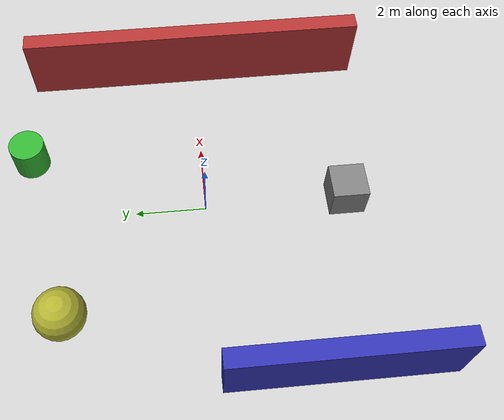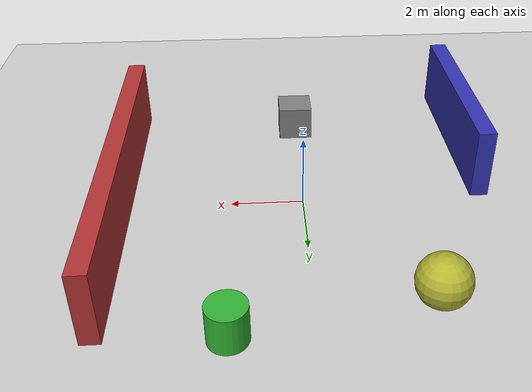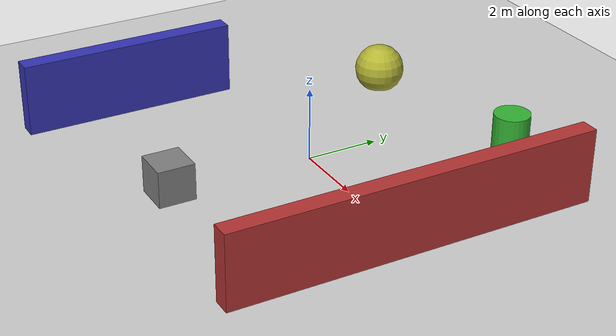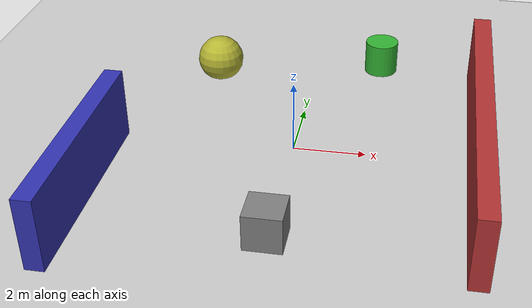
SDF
<?xml version="1.0"?>
<sdf version="1.11">
    <world name="empty">
        <physics name="1ms" type="ignored">
            <max_step_size>0.001</max_step_size>
            <real_time_factor>1.0</real_time_factor>
        </physics>
        <plugin
        filename="gz-sim-physics-system"
        name="gz::sim::systems::Physics">
        </plugin>
        <plugin
        filename="gz-sim-sensors-system"
        name="gz::sim::systems::Sensors">
        </plugin>
        <plugin
        filename="gz-sim-scene-broadcaster-system"
        name="gz::sim::systems::SceneBroadcaster">
        </plugin>
        <plugin
        filename="gz-sim-user-commands-system"
        name="gz::sim::systems::UserCommands">
        </plugin>
        <plugin filename="gz-sim-imu-system"
            name="gz::sim::systems::Imu">
        </plugin>
        <light name="sun" type="directional">
            <cast_shadows>true</cast_shadows>
            <pose>0 0 10 0 0 0</pose>
            <diffuse>0.8 0.8 0.8 1</diffuse>
            <specular>0.2 0.2 0.2 1</specular>
            <attenuation>
                <range>1000</range>
                <constant>0.9</constant>
                <linear>0.01</linear>
                <quadratic>0.001</quadratic>
            </attenuation>
            <direction>-0.5 0.1 -0.9</direction>
        </light>
        <model name="ground_plane">
            <static>true</static>
            <link name="link">
                <collision name="collision">
                    <geometry>
                        <plane>
                            <normal>0 0 1</normal>
                            <size>100 100</size>
                        </plane>
                    </geometry>
                    <surface>
                        <friction>
                            <ode>
                                <mu>50</mu>
                            </ode>
                            <bullet>
                                <friction>1</friction>
                                <friction2>1</friction2>
                                <rolling_friction>0.1</rolling_friction>
                            </bullet>
                        </friction>
                    </surface>
                </collision>
                <visual name="visual">
                    <geometry>
                        <plane>
                            <normal>0 0 1</normal>
                            <size>100 100</size>
                        </plane>
                    </geometry>
                    <material>
                        <ambient>0.8 0.8 0.8 1</ambient>
                        <diffuse>0.8 0.8 0.8 1</diffuse>
                        <specular>0.8 0.8 0.8 1</specular>
                    </material>
                </visual>
            </link>
        </model>
        <model name="wall_1">
            <static>true</static>
            <pose>5 0 1 0 0 0</pose>
            <link name="link">
                <collision name="collision">
                    <geometry>
                        <box>
                            <size>0.5 10 2</size>
                        </box>
                    </geometry>
                </collision>
                <visual name="visual">
                    <geometry>
                        <box>
                            <size>0.5 10 2</size>
                        </box>
                    </geometry>
                    <material>
                        <ambient>0.7 0.2 0.2 1</ambient>
                        <diffuse>0.7 0.2 0.2 1</diffuse>
                    </material>
                </visual>
            </link>
        </model>

        <model name="wall_2">
            <static>true</static>
            <pose>-5 -3 1 0 0 0</pose>
            <link name="link">
                <collision name="collision">
                    <geometry>
                        <box>
                            <size>0.5 6 2</size>
                        </box>
                    </geometry>
                </collision>
                <visual name="visual">
                    <geometry>
                        <box>
                            <size>0.5 6 2</size>
                        </box>
                    </geometry>
                    <material>
                        <ambient>0.2 0.2 0.7 1</ambient>
                        <diffuse>0.2 0.2 0.7 1</diffuse>
                    </material>
                </visual>
            </link>
        </model>

        <model name="obstacle_1">
            <static>true</static>
            <pose>2 5 0.5 0 0 0</pose>
            <link name="link">
                <collision name="collision">
                    <geometry>
                        <cylinder>
                            <radius>0.5</radius>
                            <length>1</length>
                        </cylinder>
                    </geometry>
                </collision>
                <visual name="visual">
                    <geometry>
                        <cylinder>
                            <radius>0.5</radius>
                            <length>1</length>
                        </cylinder>
                    </geometry>
                    <material>
                        <ambient>0.2 0.7 0.2 1</ambient>
                        <diffuse>0.2 0.7 0.2 1</diffuse>
                    </material>
                </visual>
            </link>
        </model>

        <model name="obstacle_2">
            <static>true</static>
            <pose>-3 4 0.5 0 0 0</pose>
            <link name="link">
                <collision name="collision">
                    <geometry>
                        <sphere>
                            <radius>0.7</radius>
                        </sphere>
                    </geometry>
                </collision>
                <visual name="visual">
                    <geometry>
                        <sphere>
                            <radius>0.7</radius>
                        </sphere>
                    </geometry>
                    <material>
                        <ambient>0.7 0.7 0.2 1</ambient>
                        <diffuse>0.7 0.7 0.2 1</diffuse>
                    </material>
                </visual>
            </link>
        </model>

        <model name="obstacle_3">
            <static>true</static>
            <pose>0 -4 0.5 0 0 0</pose>
            <link name="link">
                <collision name="collision">
                    <geometry>
                        <box>
                            <size>1 1 1</size>
                        </box>
                    </geometry>
                </collision>
                <visual name="visual">
                    <geometry>
                        <box>
                            <size>1 1 1</size>
                        </box>
                    </geometry>
                    <material>
                        <ambient>0.5 0.5 0.5 1</ambient>
                        <diffuse>0.5 0.5 0.5 1</diffuse>
                    </material>
                </visual>
            </link>
        </model>
    </world>
</sdf>
